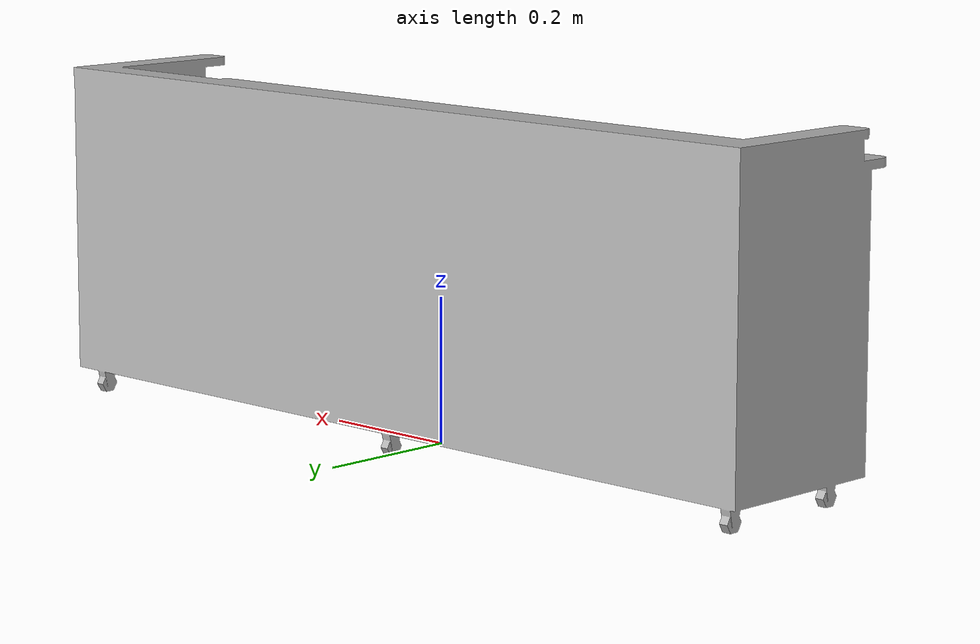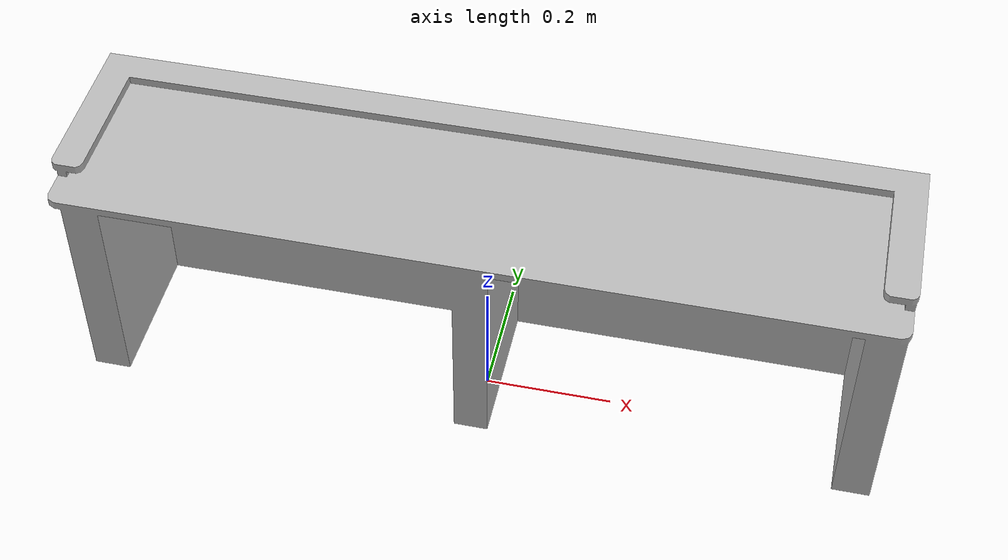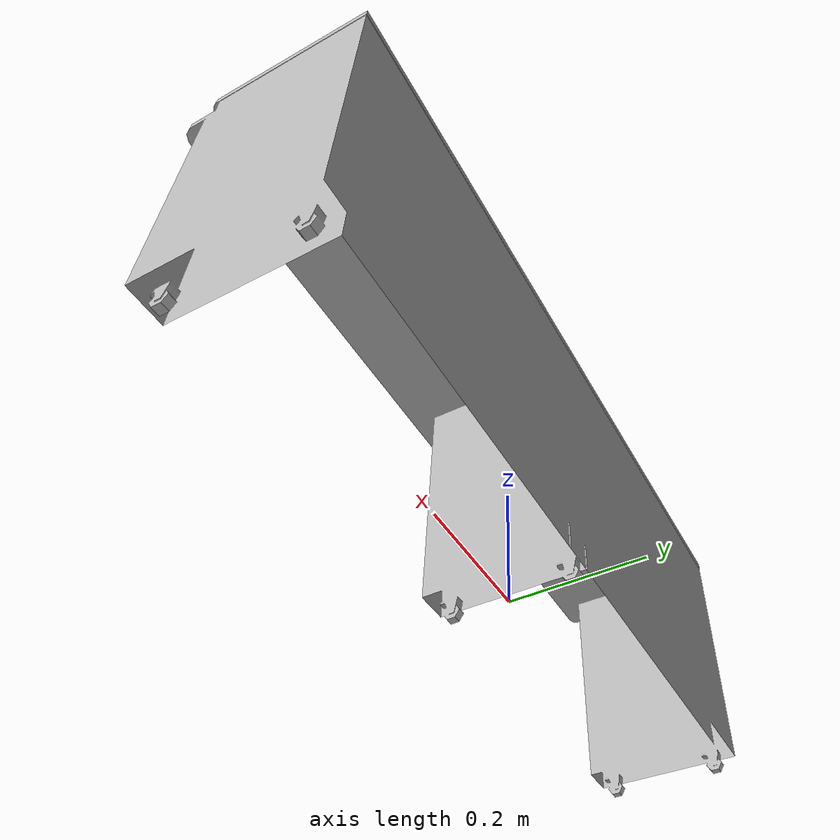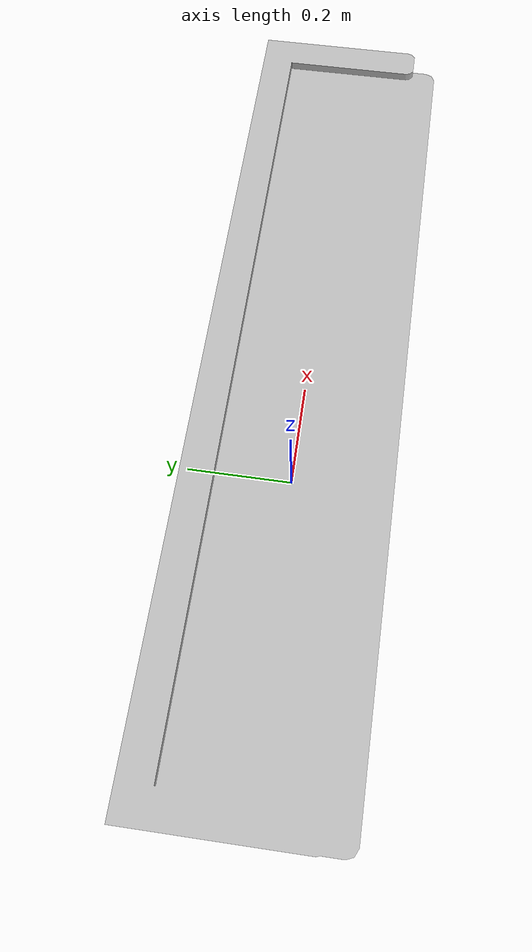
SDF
<?xml version='1.0' encoding='utf-8'?>
<sdf version="1.6">
  <model name="NurseTable">
   <static>true</static>
    <link name="body">
      <pose>0 0 0 0 0 0</pose>

      <visual name="visual">
        <geometry>
          <mesh>
            <uri>model://NurseTable/meshes/NurseTable.obj</uri>
            <scale>0.5 0.5 0.5</scale>
          </mesh>
        </geometry>
      </visual>

      <collision name="collision">
        <geometry>
          <mesh>
            <uri>model://NurseTable/meshes/NurseTable_Col.obj</uri>
            <scale>0.5 0.5 0.5</scale>
          </mesh>
        </geometry>
      </collision>

    </link>
  </model>
</sdf>
